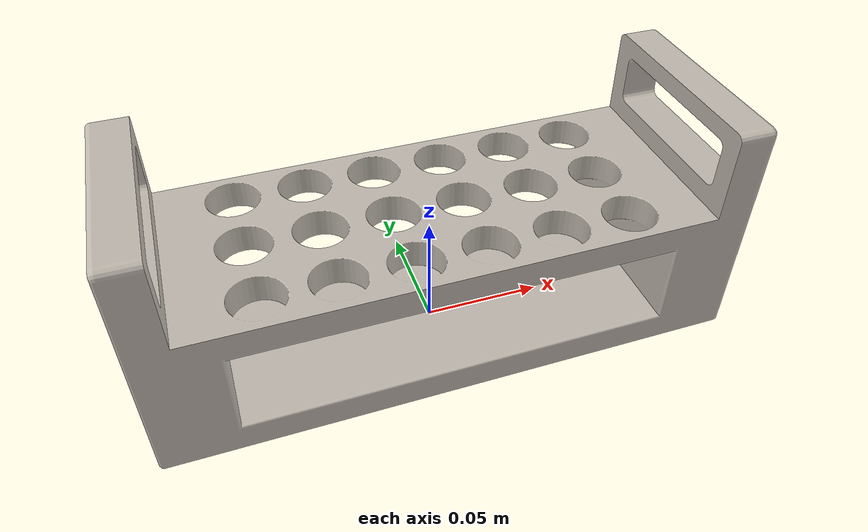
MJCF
<?xml version="1.0" ?>
<mujoco model="chemistry_tube_rack">
  <asset>
    <texture type="2d" name="Tube_Rack_Material" file="Tube_Rack_Material.png"/>
    <material name="Tube_Rack_Material" texture="Tube_Rack_Material" specular="0.4000000000000001" shininess="0.001"/>
    <mesh file="chemistry_tube_rack.obj" scale="1.2 1.2 1.2"/>
    <mesh file="chemistry_tube_rack/chemistry_tube_rack_collision_0.obj" scale="1.2 1.2 1.2"/>
    <mesh file="chemistry_tube_rack/chemistry_tube_rack_collision_1.obj" scale="1.2 1.2 1.2"/>
    <mesh file="chemistry_tube_rack/chemistry_tube_rack_collision_2.obj" scale="1.2 1.2 1.2"/>
    <mesh file="chemistry_tube_rack/chemistry_tube_rack_collision_3.obj" scale="1.2 1.2 1.2"/>
    <mesh file="chemistry_tube_rack/chemistry_tube_rack_collision_4.obj" scale="1.2 1.2 1.2"/>
    <mesh file="chemistry_tube_rack/chemistry_tube_rack_collision_5.obj" scale="1.2 1.2 1.2"/>
    <mesh file="chemistry_tube_rack/chemistry_tube_rack_collision_6.obj" scale="1.2 1.2 1.2"/>
    <mesh file="chemistry_tube_rack/chemistry_tube_rack_collision_7.obj" scale="1.2 1.2 1.2"/>
    <mesh file="chemistry_tube_rack/chemistry_tube_rack_collision_8.obj" scale="1.2 1.2 1.2"/>
    <mesh file="chemistry_tube_rack/chemistry_tube_rack_collision_9.obj" scale="1.2 1.2 1.2"/>
    <mesh file="chemistry_tube_rack/chemistry_tube_rack_collision_10.obj" scale="1.2 1.2 1.2"/>
    <mesh file="chemistry_tube_rack/chemistry_tube_rack_collision_11.obj" scale="1.2 1.2 1.2"/>
    <mesh file="chemistry_tube_rack/chemistry_tube_rack_collision_12.obj" scale="1.2 1.2 1.2"/>
    <mesh file="chemistry_tube_rack/chemistry_tube_rack_collision_13.obj" scale="1.2 1.2 1.2"/>
    <mesh file="chemistry_tube_rack/chemistry_tube_rack_collision_14.obj" scale="1.2 1.2 1.2"/>
    <mesh file="chemistry_tube_rack/chemistry_tube_rack_collision_15.obj" scale="1.2 1.2 1.2"/>
    <mesh file="chemistry_tube_rack/chemistry_tube_rack_collision_16.obj" scale="1.2 1.2 1.2"/>
    <mesh file="chemistry_tube_rack/chemistry_tube_rack_collision_17.obj" scale="1.2 1.2 1.2"/>
    <mesh file="chemistry_tube_rack/chemistry_tube_rack_collision_18.obj" scale="1.2 1.2 1.2"/>
    <mesh file="chemistry_tube_rack/chemistry_tube_rack_collision_19.obj" scale="1.2 1.2 1.2"/>
    <mesh file="chemistry_tube_rack/chemistry_tube_rack_collision_20.obj" scale="1.2 1.2 1.2"/>
    <mesh file="chemistry_tube_rack/chemistry_tube_rack_collision_21.obj" scale="1.2 1.2 1.2"/>
    <mesh file="chemistry_tube_rack/chemistry_tube_rack_collision_22.obj" scale="1.2 1.2 1.2"/>
    <mesh file="chemistry_tube_rack/chemistry_tube_rack_collision_23.obj" scale="1.2 1.2 1.2"/>
    <mesh file="chemistry_tube_rack/chemistry_tube_rack_collision_24.obj" scale="1.2 1.2 1.2"/>
    <mesh file="chemistry_tube_rack/chemistry_tube_rack_collision_25.obj" scale="1.2 1.2 1.2"/>
    <mesh file="chemistry_tube_rack/chemistry_tube_rack_collision_26.obj" scale="1.2 1.2 1.2"/>
    <mesh file="chemistry_tube_rack/chemistry_tube_rack_collision_27.obj" scale="1.2 1.2 1.2"/>
    <mesh file="chemistry_tube_rack/chemistry_tube_rack_collision_28.obj" scale="1.2 1.2 1.2"/>
    <mesh file="chemistry_tube_rack/chemistry_tube_rack_collision_29.obj" scale="1.2 1.2 1.2"/>
    <mesh file="chemistry_tube_rack/chemistry_tube_rack_collision_30.obj" scale="1.2 1.2 1.2"/>
    <mesh file="chemistry_tube_rack/chemistry_tube_rack_collision_31.obj" scale="1.2 1.2 1.2"/>
    <mesh file="chemistry_tube_rack/chemistry_tube_rack_collision_32.obj" scale="1.2 1.2 1.2"/>
    <mesh file="chemistry_tube_rack/chemistry_tube_rack_collision_33.obj" scale="1.2 1.2 1.2"/>
    <mesh file="chemistry_tube_rack/chemistry_tube_rack_collision_34.obj" scale="1.2 1.2 1.2"/>
    <mesh file="chemistry_tube_rack/chemistry_tube_rack_collision_35.obj" scale="1.2 1.2 1.2"/>
    <mesh file="chemistry_tube_rack/chemistry_tube_rack_collision_36.obj" scale="1.2 1.2 1.2"/>
    <mesh file="chemistry_tube_rack/chemistry_tube_rack_collision_37.obj" scale="1.2 1.2 1.2"/>
    <mesh file="chemistry_tube_rack/chemistry_tube_rack_collision_38.obj" scale="1.2 1.2 1.2"/>
    <mesh file="chemistry_tube_rack/chemistry_tube_rack_collision_39.obj" scale="1.2 1.2 1.2"/>
    <mesh file="chemistry_tube_rack/chemistry_tube_rack_collision_40.obj" scale="1.2 1.2 1.2"/>
    <mesh file="chemistry_tube_rack/chemistry_tube_rack_collision_41.obj" scale="1.2 1.2 1.2"/>
    <mesh file="chemistry_tube_rack/chemistry_tube_rack_collision_42.obj" scale="1.2 1.2 1.2"/>
    <mesh file="chemistry_tube_rack/chemistry_tube_rack_collision_43.obj" scale="1.2 1.2 1.2"/>
    <mesh file="chemistry_tube_rack/chemistry_tube_rack_collision_44.obj" scale="1.2 1.2 1.2"/>
    <mesh file="chemistry_tube_rack/chemistry_tube_rack_collision_45.obj" scale="1.2 1.2 1.2"/>
    <mesh file="chemistry_tube_rack/chemistry_tube_rack_collision_46.obj" scale="1.2 1.2 1.2"/>
    <mesh file="chemistry_tube_rack/chemistry_tube_rack_collision_47.obj" scale="1.2 1.2 1.2"/>
    <mesh file="chemistry_tube_rack/chemistry_tube_rack_collision_48.obj" scale="1.2 1.2 1.2"/>
  </asset>
  <worldbody>
    <body name="chemistry_tube_rack">
      <inertial pos="0 0 0.0486" mass="0.02" diaginertia="0.0008 0.0008 0.0005"/>
      <geom material="Tube_Rack_Material" mesh="chemistry_tube_rack" class="visual"/>
      <geom mesh="chemistry_tube_rack_collision_0" class="collision"/>
      <geom mesh="chemistry_tube_rack_collision_1" class="collision"/>
      <geom mesh="chemistry_tube_rack_collision_2" class="collision"/>
      <geom mesh="chemistry_tube_rack_collision_3" class="collision"/>
      <geom mesh="chemistry_tube_rack_collision_4" class="collision"/>
      <geom mesh="chemistry_tube_rack_collision_5" class="collision"/>
      <geom mesh="chemistry_tube_rack_collision_6" class="collision"/>
      <geom mesh="chemistry_tube_rack_collision_7" class="collision"/>
      <geom mesh="chemistry_tube_rack_collision_8" class="collision"/>
      <geom mesh="chemistry_tube_rack_collision_9" class="collision"/>
      <geom mesh="chemistry_tube_rack_collision_10" class="collision"/>
      <geom mesh="chemistry_tube_rack_collision_11" class="collision"/>
      <geom mesh="chemistry_tube_rack_collision_12" class="collision"/>
      <geom mesh="chemistry_tube_rack_collision_13" class="collision"/>
      <geom mesh="chemistry_tube_rack_collision_14" class="collision"/>
      <geom mesh="chemistry_tube_rack_collision_15" class="collision"/>
      <geom mesh="chemistry_tube_rack_collision_16" class="collision"/>
      <geom mesh="chemistry_tube_rack_collision_17" class="collision"/>
      <geom mesh="chemistry_tube_rack_collision_18" class="collision"/>
      <geom mesh="chemistry_tube_rack_collision_19" class="collision"/>
      <geom mesh="chemistry_tube_rack_collision_20" class="collision"/>
      <geom mesh="chemistry_tube_rack_collision_21" class="collision"/>
      <geom mesh="chemistry_tube_rack_collision_22" class="collision"/>
      <geom mesh="chemistry_tube_rack_collision_23" class="collision"/>
      <geom mesh="chemistry_tube_rack_collision_24" class="collision"/>
      <geom mesh="chemistry_tube_rack_collision_25" class="collision"/>
      <geom mesh="chemistry_tube_rack_collision_26" class="collision"/>
      <geom mesh="chemistry_tube_rack_collision_27" class="collision"/>
      <geom mesh="chemistry_tube_rack_collision_28" class="collision"/>
      <geom mesh="chemistry_tube_rack_collision_29" class="collision"/>
      <geom mesh="chemistry_tube_rack_collision_30" class="collision"/>
      <geom mesh="chemistry_tube_rack_collision_31" class="collision"/>
      <geom mesh="chemistry_tube_rack_collision_32" class="collision"/>
      <geom mesh="chemistry_tube_rack_collision_33" class="collision"/>
      <geom mesh="chemistry_tube_rack_collision_34" class="collision"/>
      <geom mesh="chemistry_tube_rack_collision_35" class="collision"/>
      <geom mesh="chemistry_tube_rack_collision_36" class="collision"/>
      <geom mesh="chemistry_tube_rack_collision_37" class="collision"/>
      <geom mesh="chemistry_tube_rack_collision_38" class="collision"/>
      <geom mesh="chemistry_tube_rack_collision_39" class="collision"/>
      <geom mesh="chemistry_tube_rack_collision_40" class="collision"/>
      <geom mesh="chemistry_tube_rack_collision_41" class="collision"/>
      <geom mesh="chemistry_tube_rack_collision_42" class="collision"/>
      <geom mesh="chemistry_tube_rack_collision_43" class="collision"/>
      <geom mesh="chemistry_tube_rack_collision_44" class="collision"/>
      <geom mesh="chemistry_tube_rack_collision_45" class="collision"/>
      <geom mesh="chemistry_tube_rack_collision_46" class="collision"/>
      <geom mesh="chemistry_tube_rack_collision_47" class="collision"/>
      <geom mesh="chemistry_tube_rack_collision_48" class="collision"/>
      <site class="keypoint" pos="-0.1181 -0.0432 0.0000"/>
      <site class="keypoint" pos="0.1181 0.0432 0.0972"/>
      <!-- 4 tube holes in the rack top surface: X=±0.094, Y=±0.012, Z_top=0.081 -->
      <site class="placepoint" pos="-0.1128 -0.0144 0.1092" name="hole_0_0"/>
      <site class="placepoint" pos="-0.1128 0.0144 0.1092" name="hole_0_1"/>
      <site class="placepoint" pos="0.1128 -0.0144 0.1092" name="hole_1_0"/>
      <site class="placepoint" pos="0.1128 0.0144 0.1092" name="hole_1_1"/>
</body>
  </worldbody>
  <compiler boundmass="0.015" boundinertia="1e-05" angle="radian"/>
  <default>
    <default class="visual">
      <geom group="2" type="mesh" contype="0" conaffinity="0" density="50"/>
    </default>
    <default class="collision">
      <geom group="3" type="mesh" density="50" friction="1.5 0.1 0.1" solimp="0.9 0.95 0.001" solref="0.02 1"/>
    </default>
    <default class="grasppoint">
      <site type="sphere" size="0.005" group="4" rgba="0 0 1 1"/>
    </default>
    <default class="keypoint">
      <site type="sphere" size="0.01" group="3" rgba="1 0 0 1"/>
    </default>
    <default class="placepoint">
      <site type="sphere" size="0.01" group="2" rgba="0 0 1 0"/>
    </default>
  </default>
</mujoco>
